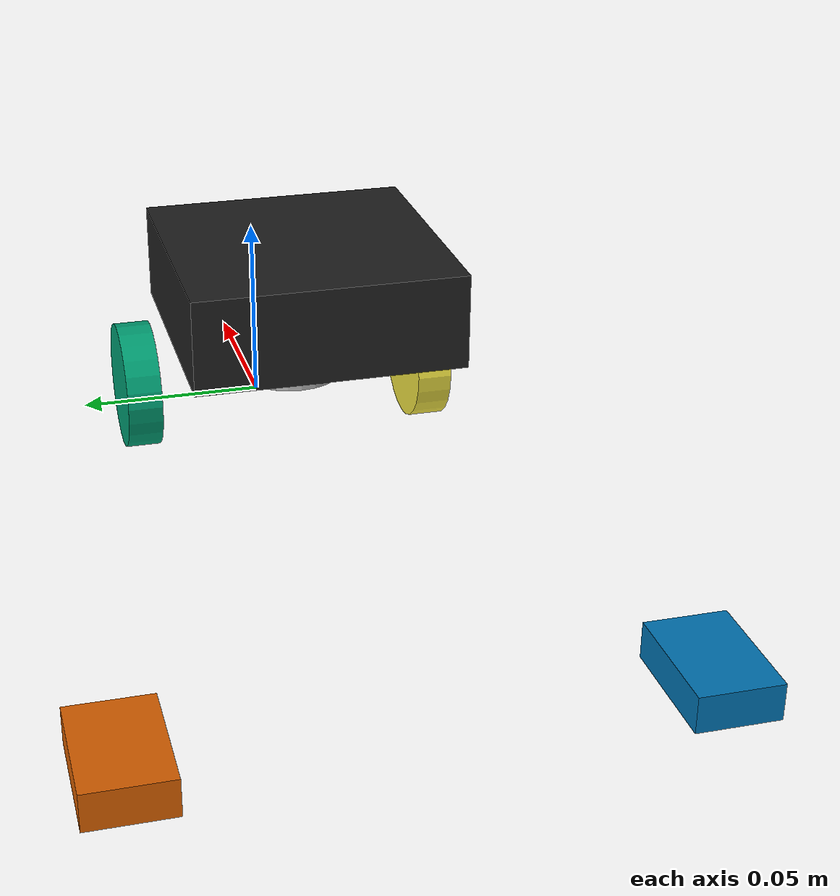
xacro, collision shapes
<?xml version="1.0" ?>

<!-- TODO make wheels heavier + make back links heavier if needed-->

<robot name="turtlebot3_waffle" xmlns:xacro="http://ros.org/wiki/xacro">
  <xacro:include filename="$(find turtlebot3_description)/urdf/common_properties.xacro"/>
  <xacro:include filename="$(find turtlebot3_description)/urdf/turtlebot3_waffle.gazebo.xacro"/>

  <xacro:property name="r200_cam_rgb_px" value="0.005"/>
  <xacro:property name="r200_cam_rgb_py" value="0.018"/>
  <xacro:property name="r200_cam_rgb_pz" value="0.013"/>
  <xacro:property name="r200_cam_depth_offset" value="0.01"/>

  <link name="base_footprint"/>

  <joint name="base_joint" type="fixed">
    <parent link="base_footprint"/>
    <child link="base_link" />
    <origin xyz="0 0 0.010" rpy="0 0 0"/>
  </joint>

  <link name="base_link">
    <visual>
      <origin xyz="-0.064 0 0.0" rpy="0 0 0"/>
      <geometry>
        <mesh filename="package://turtlebot3_description/meshes/bases/waffle_base.stl" scale="0.00025 0.00025 0.00025"/>
      </geometry>
      <material name="light_black"/>
    </visual>

    <collision>
      <origin xyz="-0.064 0 0.047" rpy="0 0 0"/>  <!-- Maybe this needs adjusting-->
      <geometry>
        <box size="0.0665 0.0665 0.0235"/>
      </geometry>
    </collision>

    <inertial>
      <origin xyz="0 0 0" rpy="0 0 0"/>
      <mass value="13.729096e+00"/>
      <inertia ixx="8.7002718e-03" ixy="-4.7576583e-05" ixz="1.1160499e-04"
               iyy="8.6195418e-03" iyz="-3.5422299e-06"
               izz="1.4612727e-02" />
    </inertial>
  </link>

  <joint name="wheel_left_joint" type="continuous">
    <parent link="base_link"/>
    <child link="wheel_left_link"/>
    <origin xyz="-0.035 0.039 0.0115" rpy="-1.57 0 0"/>
    <axis xyz="0 0 1"/>
  </joint>

  <link name="wheel_left_link">
    <visual>
      <origin xyz="0 0 0" rpy="1.57 0 0"/>
      <geometry>
        <mesh filename="package://turtlebot3_description/meshes/wheels/left_tire.stl" scale="0.0005 0.0005 0.0005"/>
      </geometry>
      <material name="dark"/>
    </visual>

    <collision>
      <origin xyz="0 0 0" rpy="0 0 0"/>
      <geometry>
        <cylinder length="0.009" radius="0.0165"/>
      </geometry>
    </collision>

    <inertial>
      <origin xyz="0 0 0" />
      <mass value="28.498940e-02" />
      <inertia ixx="1.1175580e-05" ixy="-4.2369783e-11" ixz="-5.9381719e-09"
               iyy="1.1192413e-05" iyz="-1.4400107e-11"
               izz="2.0712558e-05" />
      </inertial>
  </link>

  <joint name="wheel_right_joint" type="continuous">
    <parent link="base_link"/>
    <child link="wheel_right_link"/>
    <origin xyz="-0.035 -0.039 0.0115" rpy="-1.57 0 0"/>
    <axis xyz="0 0 1"/>
  </joint>

  <link name="wheel_right_link">
    <visual>
      <origin xyz="0 0 0" rpy="1.57 0 0"/>
      <geometry>
        <mesh filename="package://turtlebot3_description/meshes/wheels/right_tire.stl" scale="0.0005 0.0005 0.0005"/>
      </geometry>
      <material name="dark"/>
    </visual>

    <collision>
      <origin xyz="0 0 0" rpy="0 0 0"/>
      <geometry>
        <cylinder length="0.009" radius="0.0165"/>
      </geometry>
    </collision>

    <inertial>
      <origin xyz="0 0 0" />
      <mass value="28.498940e-02" />
      <inertia ixx="1.1175580e-05" ixy="-4.2369783e-11" ixz="-5.9381719e-09"
               iyy="1.1192413e-05" iyz="-1.4400107e-11"
               izz="2.0712558e-05" />
      </inertial>
  </link>

  <joint name="caster_back_right_joint" type="fixed">
    <parent link="base_link"/>
    <child link="caster_back_right_link"/>
    <origin xyz="-0.177 -0.064 -0.004" rpy="-1.57 0 0"/>
  </joint>

  <link name="caster_back_right_link">
    <collision>
      <origin xyz="0 0.001 0" rpy="0 0 0"/>
      <geometry>
        <box size="0.030 0.009 0.020"/> <!--box size="0.010 0.003 0.006667"/-->
      </geometry>
    </collision>

    <inertial>
      <origin xyz="0 0 0" />
      <mass value="3.2" />
      <inertia ixx="0.001" ixy="0.0" ixz="0.0"
               iyy="0.001" iyz="0.0"
               izz="0.001" />
    </inertial>
  </link>

  <joint name="caster_back_left_joint" type="fixed">
    <parent link="base_link"/>
    <child link="caster_back_left_link"/>
    <origin xyz="-0.177 0.064 -0.004" rpy="-1.57 0 0"/>
  </joint>

  <link name="caster_back_left_link">
    <collision>
      <origin xyz="0 0.001 0" rpy="0 0 0"/>
      <geometry>
        <box size="0.030 0.009 0.020"/>
      </geometry>
    </collision>

    <inertial>
      <origin xyz="0 0 0" />
      <mass value="3.2" />
      <inertia ixx="0.001" ixy="0.0" ixz="0.0"
               iyy="0.001" iyz="0.0"
               izz="0.001" />
    </inertial>
  </link>

  <joint name="imu_joint" type="fixed">
    <parent link="base_link"/>
    <child link="imu_link"/>
    <origin xyz="0.0 0 0.068" rpy="0 0 0"/>
  </joint>

  <link name="imu_link"/>

  <joint name="scan_joint" type="fixed">
    <parent link="base_link"/>
    <child link="base_scan"/>
    <origin xyz="-0.064 0 0.027875" rpy="0 0 0"/>
  </joint>

  <link name="base_scan">
    <visual>
      <origin xyz="0 0 0" rpy="0 0 0"/>
      <geometry>
        <mesh filename="package://turtlebot3_description/meshes/sensors/lds.stl" scale="0.00025 0.00025 0.00025"/>
      </geometry>
      <material name="dark"/>
    </visual>

    <collision>
      <origin xyz="0.015 0 -0.0065" rpy="0 0 0"/>
      <geometry>
        <cylinder length="0.007875" radius="0.01375"/>
      </geometry>
    </collision>

    <inertial>
      <mass value="0.285" />
      <origin xyz="0 0 0" />
      <inertia ixx="0.001" ixy="0.0" ixz="0.0"
               iyy="0.001" iyz="0.0"
               izz="0.001" />
    </inertial>
  </link>

</robot>
